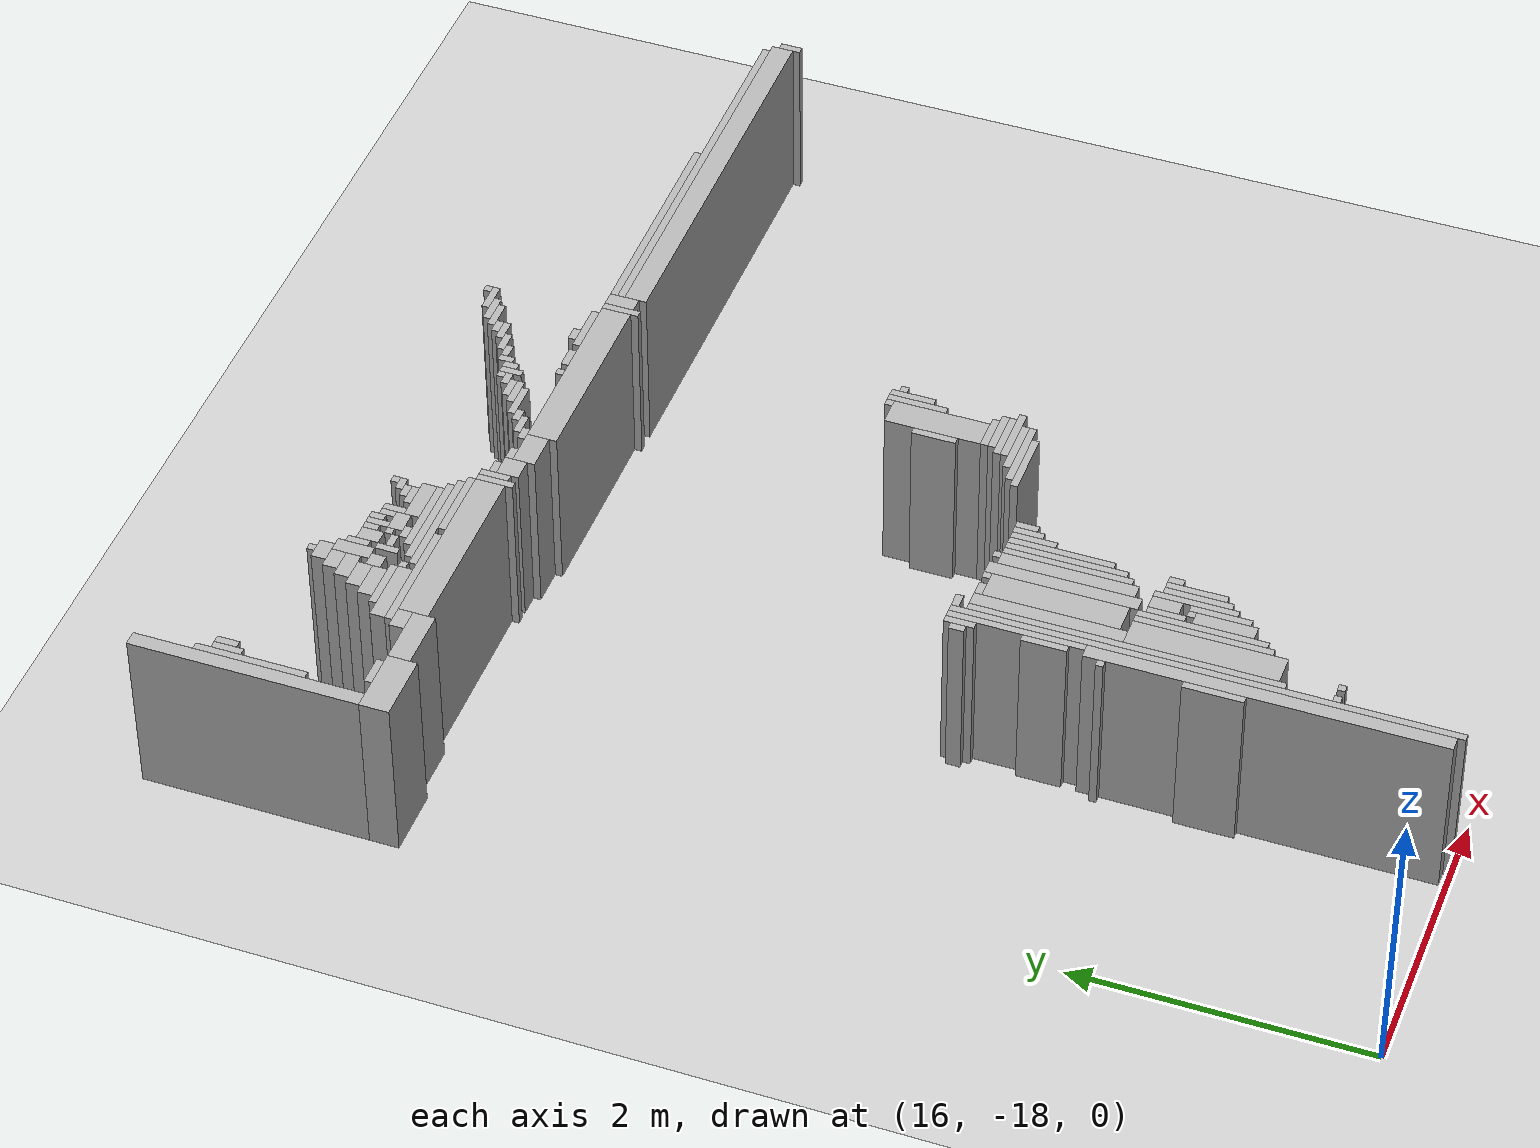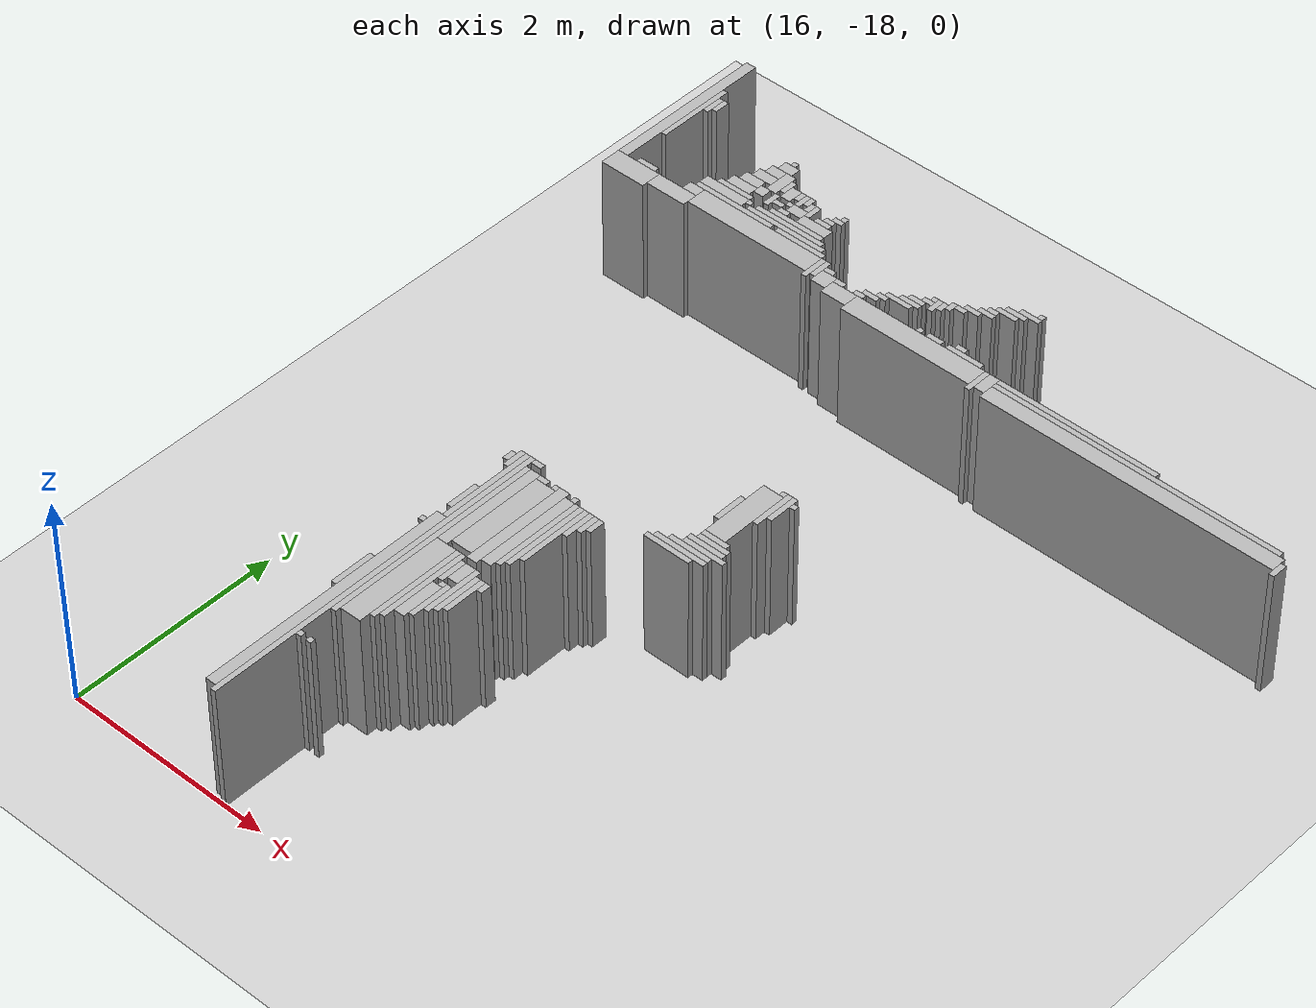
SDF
<sdf version="1.6">
 <world name="d10_floor">
  <include><uri>model://sun</uri></include>
  <include><uri>model://ground_plane</uri></include>
  <model name="d10_walls">
   <static>true</static>
   <link name="w157">
    <pose>17.600 -16.345 0.60 0 0 0</pose>
    <collision name="c"><geometry><box><size>0.050 3.300 1.20</size></box></geometry></collision>
    <visual name="v">
     <geometry><box><size>0.050 3.300 1.20</size></box></geometry>
     <material><ambient>0.6 0.6 0.6 1</ambient><diffuse>0.7 0.7 0.7 1</diffuse></material>
    </visual>
   </link>
   <link name="w164">
    <pose>17.525 -16.770 0.60 0 0 0</pose>
    <collision name="c"><geometry><box><size>0.100 2.350 1.20</size></box></geometry></collision>
    <visual name="v">
     <geometry><box><size>0.100 2.350 1.20</size></box></geometry>
     <material><ambient>0.6 0.6 0.6 1</ambient><diffuse>0.7 0.7 0.7 1</diffuse></material>
    </visual>
   </link>
   <link name="w245">
    <pose>17.650 -17.170 0.60 0 0 0</pose>
    <collision name="c"><geometry><box><size>0.050 0.050 1.20</size></box></geometry></collision>
    <visual name="v">
     <geometry><box><size>0.050 0.050 1.20</size></box></geometry>
     <material><ambient>0.6 0.6 0.6 1</ambient><diffuse>0.7 0.7 0.7 1</diffuse></material>
    </visual>
   </link>
   <link name="w246">
    <pose>17.750 -17.170 0.60 0 0 0</pose>
    <collision name="c"><geometry><box><size>0.050 0.050 1.20</size></box></geometry></collision>
    <visual name="v">
     <geometry><box><size>0.050 0.050 1.20</size></box></geometry>
     <material><ambient>0.6 0.6 0.6 1</ambient><diffuse>0.7 0.7 0.7 1</diffuse></material>
    </visual>
   </link>
   <link name="w257">
    <pose>17.650 -15.820 0.60 0 0 0</pose>
    <collision name="c"><geometry><box><size>0.050 2.050 1.20</size></box></geometry></collision>
    <visual name="v">
     <geometry><box><size>0.050 2.050 1.20</size></box></geometry>
     <material><ambient>0.6 0.6 0.6 1</ambient><diffuse>0.7 0.7 0.7 1</diffuse></material>
    </visual>
   </link>
   <link name="w260">
    <pose>17.775 -16.295 0.60 0 0 0</pose>
    <collision name="c"><geometry><box><size>0.200 1.000 1.20</size></box></geometry></collision>
    <visual name="v">
     <geometry><box><size>0.200 1.000 1.20</size></box></geometry>
     <material><ambient>0.6 0.6 0.6 1</ambient><diffuse>0.7 0.7 0.7 1</diffuse></material>
    </visual>
   </link>
   <link name="w268">
    <pose>17.900 -16.245 0.60 0 0 0</pose>
    <collision name="c"><geometry><box><size>0.050 0.900 1.20</size></box></geometry></collision>
    <visual name="v">
     <geometry><box><size>0.050 0.900 1.20</size></box></geometry>
     <material><ambient>0.6 0.6 0.6 1</ambient><diffuse>0.7 0.7 0.7 1</diffuse></material>
    </visual>
   </link>
   <link name="w272">
    <pose>17.450 -16.445 0.60 0 0 0</pose>
    <collision name="c"><geometry><box><size>0.050 0.400 1.20</size></box></geometry></collision>
    <visual name="v">
     <geometry><box><size>0.050 0.400 1.20</size></box></geometry>
     <material><ambient>0.6 0.6 0.6 1</ambient><diffuse>0.7 0.7 0.7 1</diffuse></material>
    </visual>
   </link>
   <link name="w273">
    <pose>17.950 -16.220 0.60 0 0 0</pose>
    <collision name="c"><geometry><box><size>0.050 0.850 1.20</size></box></geometry></collision>
    <visual name="v">
     <geometry><box><size>0.050 0.850 1.20</size></box></geometry>
     <material><ambient>0.6 0.6 0.6 1</ambient><diffuse>0.7 0.7 0.7 1</diffuse></material>
    </visual>
   </link>
   <link name="w284">
    <pose>18.025 -16.345 0.60 0 0 0</pose>
    <collision name="c"><geometry><box><size>0.100 0.400 1.20</size></box></geometry></collision>
    <visual name="v">
     <geometry><box><size>0.100 0.400 1.20</size></box></geometry>
     <material><ambient>0.6 0.6 0.6 1</ambient><diffuse>0.7 0.7 0.7 1</diffuse></material>
    </visual>
   </link>
   <link name="w287">
    <pose>18.100 -16.295 0.60 0 0 0</pose>
    <collision name="c"><geometry><box><size>0.050 0.400 1.20</size></box></geometry></collision>
    <visual name="v">
     <geometry><box><size>0.050 0.400 1.20</size></box></geometry>
     <material><ambient>0.6 0.6 0.6 1</ambient><diffuse>0.7 0.7 0.7 1</diffuse></material>
    </visual>
   </link>
   <link name="w295">
    <pose>18.150 -16.120 0.60 0 0 0</pose>
    <collision name="c"><geometry><box><size>0.050 0.550 1.20</size></box></geometry></collision>
    <visual name="v">
     <geometry><box><size>0.050 0.550 1.20</size></box></geometry>
     <material><ambient>0.6 0.6 0.6 1</ambient><diffuse>0.7 0.7 0.7 1</diffuse></material>
    </visual>
   </link>
   <link name="w305">
    <pose>18.200 -16.120 0.60 0 0 0</pose>
    <collision name="c"><geometry><box><size>0.050 0.450 1.20</size></box></geometry></collision>
    <visual name="v">
     <geometry><box><size>0.050 0.450 1.20</size></box></geometry>
     <material><ambient>0.6 0.6 0.6 1</ambient><diffuse>0.7 0.7 0.7 1</diffuse></material>
    </visual>
   </link>
   <link name="w320">
    <pose>18.250 -16.095 0.60 0 0 0</pose>
    <collision name="c"><geometry><box><size>0.050 0.400 1.20</size></box></geometry></collision>
    <visual name="v">
     <geometry><box><size>0.050 0.400 1.20</size></box></geometry>
     <material><ambient>0.6 0.6 0.6 1</ambient><diffuse>0.7 0.7 0.7 1</diffuse></material>
    </visual>
   </link>
   <link name="w394">
    <pose>18.050 -16.120 0.60 0 0 0</pose>
    <collision name="c"><geometry><box><size>0.050 0.050 1.20</size></box></geometry></collision>
    <visual name="v">
     <geometry><box><size>0.050 0.050 1.20</size></box></geometry>
     <material><ambient>0.6 0.6 0.6 1</ambient><diffuse>0.7 0.7 0.7 1</diffuse></material>
    </visual>
   </link>
   <link name="w426">
    <pose>18.000 -15.970 0.60 0 0 0</pose>
    <collision name="c"><geometry><box><size>0.050 0.250 1.20</size></box></geometry></collision>
    <visual name="v">
     <geometry><box><size>0.050 0.250 1.20</size></box></geometry>
     <material><ambient>0.6 0.6 0.6 1</ambient><diffuse>0.7 0.7 0.7 1</diffuse></material>
    </visual>
   </link>
   <link name="w453">
    <pose>18.075 -15.945 0.60 0 0 0</pose>
    <collision name="c"><geometry><box><size>0.100 0.200 1.20</size></box></geometry></collision>
    <visual name="v">
     <geometry><box><size>0.100 0.200 1.20</size></box></geometry>
     <material><ambient>0.6 0.6 0.6 1</ambient><diffuse>0.7 0.7 0.7 1</diffuse></material>
    </visual>
   </link>
   <link name="w468">
    <pose>18.300 -15.945 0.60 0 0 0</pose>
    <collision name="c"><geometry><box><size>0.050 0.100 1.20</size></box></geometry></collision>
    <visual name="v">
     <geometry><box><size>0.050 0.100 1.20</size></box></geometry>
     <material><ambient>0.6 0.6 0.6 1</ambient><diffuse>0.7 0.7 0.7 1</diffuse></material>
    </visual>
   </link>
   <link name="w507">
    <pose>17.725 -15.295 0.60 0 0 0</pose>
    <collision name="c"><geometry><box><size>0.100 1.000 1.20</size></box></geometry></collision>
    <visual name="v">
     <geometry><box><size>0.100 1.000 1.20</size></box></geometry>
     <material><ambient>0.6 0.6 0.6 1</ambient><diffuse>0.7 0.7 0.7 1</diffuse></material>
    </visual>
   </link>
   <link name="w508">
    <pose>18.025 -15.295 0.60 0 0 0</pose>
    <collision name="c"><geometry><box><size>0.100 1.000 1.20</size></box></geometry></collision>
    <visual name="v">
     <geometry><box><size>0.100 1.000 1.20</size></box></geometry>
     <material><ambient>0.6 0.6 0.6 1</ambient><diffuse>0.7 0.7 0.7 1</diffuse></material>
    </visual>
   </link>
   <link name="w511">
    <pose>17.450 -15.720 0.60 0 0 0</pose>
    <collision name="c"><geometry><box><size>0.050 0.050 1.20</size></box></geometry></collision>
    <visual name="v">
     <geometry><box><size>0.050 0.050 1.20</size></box></geometry>
     <material><ambient>0.6 0.6 0.6 1</ambient><diffuse>0.7 0.7 0.7 1</diffuse></material>
    </visual>
   </link>
   <link name="w512">
    <pose>17.875 -15.295 0.60 0 0 0</pose>
    <collision name="c"><geometry><box><size>0.200 0.900 1.20</size></box></geometry></collision>
    <visual name="v">
     <geometry><box><size>0.200 0.900 1.20</size></box></geometry>
     <material><ambient>0.6 0.6 0.6 1</ambient><diffuse>0.7 0.7 0.7 1</diffuse></material>
    </visual>
   </link>
   <link name="w513">
    <pose>18.125 -15.295 0.60 0 0 0</pose>
    <collision name="c"><geometry><box><size>0.100 0.900 1.20</size></box></geometry></collision>
    <visual name="v">
     <geometry><box><size>0.100 0.900 1.20</size></box></geometry>
     <material><ambient>0.6 0.6 0.6 1</ambient><diffuse>0.7 0.7 0.7 1</diffuse></material>
    </visual>
   </link>
   <link name="w520">
    <pose>18.200 -15.270 0.60 0 0 0</pose>
    <collision name="c"><geometry><box><size>0.050 0.850 1.20</size></box></geometry></collision>
    <visual name="v">
     <geometry><box><size>0.050 0.850 1.20</size></box></geometry>
     <material><ambient>0.6 0.6 0.6 1</ambient><diffuse>0.7 0.7 0.7 1</diffuse></material>
    </visual>
   </link>
   <link name="w527">
    <pose>18.250 -15.245 0.60 0 0 0</pose>
    <collision name="c"><geometry><box><size>0.050 0.800 1.20</size></box></geometry></collision>
    <visual name="v">
     <geometry><box><size>0.050 0.800 1.20</size></box></geometry>
     <material><ambient>0.6 0.6 0.6 1</ambient><diffuse>0.7 0.7 0.7 1</diffuse></material>
    </visual>
   </link>
   <link name="w540">
    <pose>17.550 -15.145 0.60 0 0 0</pose>
    <collision name="c"><geometry><box><size>0.050 0.900 1.20</size></box></geometry></collision>
    <visual name="v">
     <geometry><box><size>0.050 0.900 1.20</size></box></geometry>
     <material><ambient>0.6 0.6 0.6 1</ambient><diffuse>0.7 0.7 0.7 1</diffuse></material>
    </visual>
   </link>
   <link name="w549">
    <pose>18.300 -15.195 0.60 0 0 0</pose>
    <collision name="c"><geometry><box><size>0.050 0.700 1.20</size></box></geometry></collision>
    <visual name="v">
     <geometry><box><size>0.050 0.700 1.20</size></box></geometry>
     <material><ambient>0.6 0.6 0.6 1</ambient><diffuse>0.7 0.7 0.7 1</diffuse></material>
    </visual>
   </link>
   <link name="w552">
    <pose>17.500 -15.345 0.60 0 0 0</pose>
    <collision name="c"><geometry><box><size>0.050 0.300 1.20</size></box></geometry></collision>
    <visual name="v">
     <geometry><box><size>0.050 0.300 1.20</size></box></geometry>
     <material><ambient>0.6 0.6 0.6 1</ambient><diffuse>0.7 0.7 0.7 1</diffuse></material>
    </visual>
   </link>
   <link name="w564">
    <pose>18.350 -14.995 0.60 0 0 0</pose>
    <collision name="c"><geometry><box><size>0.050 0.300 1.20</size></box></geometry></collision>
    <visual name="v">
     <geometry><box><size>0.050 0.300 1.20</size></box></geometry>
     <material><ambient>0.6 0.6 0.6 1</ambient><diffuse>0.7 0.7 0.7 1</diffuse></material>
    </visual>
   </link>
   <link name="w566">
    <pose>18.400 -14.945 0.60 0 0 0</pose>
    <collision name="c"><geometry><box><size>0.050 0.200 1.20</size></box></geometry></collision>
    <visual name="v">
     <geometry><box><size>0.050 0.200 1.20</size></box></geometry>
     <material><ambient>0.6 0.6 0.6 1</ambient><diffuse>0.7 0.7 0.7 1</diffuse></material>
    </visual>
   </link>
   <link name="w568">
    <pose>18.450 -14.920 0.60 0 0 0</pose>
    <collision name="c"><geometry><box><size>0.050 0.150 1.20</size></box></geometry></collision>
    <visual name="v">
     <geometry><box><size>0.050 0.150 1.20</size></box></geometry>
     <material><ambient>0.6 0.6 0.6 1</ambient><diffuse>0.7 0.7 0.7 1</diffuse></material>
    </visual>
   </link>
   <link name="w569">
    <pose>17.500 -14.795 0.60 0 0 0</pose>
    <collision name="c"><geometry><box><size>0.050 0.200 1.20</size></box></geometry></collision>
    <visual name="v">
     <geometry><box><size>0.050 0.200 1.20</size></box></geometry>
     <material><ambient>0.6 0.6 0.6 1</ambient><diffuse>0.7 0.7 0.7 1</diffuse></material>
    </visual>
   </link>
   <link name="w570">
    <pose>17.450 -14.795 0.60 0 0 0</pose>
    <collision name="c"><geometry><box><size>0.050 0.100 1.20</size></box></geometry></collision>
    <visual name="v">
     <geometry><box><size>0.050 0.100 1.20</size></box></geometry>
     <material><ambient>0.6 0.6 0.6 1</ambient><diffuse>0.7 0.7 0.7 1</diffuse></material>
    </visual>
   </link>
   <link name="w571">
    <pose>17.825 -14.820 0.60 0 0 0</pose>
    <collision name="c"><geometry><box><size>0.100 0.050 1.20</size></box></geometry></collision>
    <visual name="v">
     <geometry><box><size>0.100 0.050 1.20</size></box></geometry>
     <material><ambient>0.6 0.6 0.6 1</ambient><diffuse>0.7 0.7 0.7 1</diffuse></material>
    </visual>
   </link>
   <link name="w572">
    <pose>17.950 -14.820 0.60 0 0 0</pose>
    <collision name="c"><geometry><box><size>0.050 0.050 1.20</size></box></geometry></collision>
    <visual name="v">
     <geometry><box><size>0.050 0.050 1.20</size></box></geometry>
     <material><ambient>0.6 0.6 0.6 1</ambient><diffuse>0.7 0.7 0.7 1</diffuse></material>
    </visual>
   </link>
   <link name="w573">
    <pose>18.150 -14.820 0.60 0 0 0</pose>
    <collision name="c"><geometry><box><size>0.050 0.050 1.20</size></box></geometry></collision>
    <visual name="v">
     <geometry><box><size>0.050 0.050 1.20</size></box></geometry>
     <material><ambient>0.6 0.6 0.6 1</ambient><diffuse>0.7 0.7 0.7 1</diffuse></material>
    </visual>
   </link>
   <link name="w574">
    <pose>17.675 -14.720 0.60 0 0 0</pose>
    <collision name="c"><geometry><box><size>0.100 0.050 1.20</size></box></geometry></collision>
    <visual name="v">
     <geometry><box><size>0.100 0.050 1.20</size></box></geometry>
     <material><ambient>0.6 0.6 0.6 1</ambient><diffuse>0.7 0.7 0.7 1</diffuse></material>
    </visual>
   </link>
   <link name="w575">
    <pose>19.000 -14.720 0.60 0 0 0</pose>
    <collision name="c"><geometry><box><size>0.450 0.050 1.20</size></box></geometry></collision>
    <visual name="v">
     <geometry><box><size>0.450 0.050 1.20</size></box></geometry>
     <material><ambient>0.6 0.6 0.6 1</ambient><diffuse>0.7 0.7 0.7 1</diffuse></material>
    </visual>
   </link>
   <link name="w576">
    <pose>19.075 -14.670 0.60 0 0 0</pose>
    <collision name="c"><geometry><box><size>0.500 0.050 1.20</size></box></geometry></collision>
    <visual name="v">
     <geometry><box><size>0.500 0.050 1.20</size></box></geometry>
     <material><ambient>0.6 0.6 0.6 1</ambient><diffuse>0.7 0.7 0.7 1</diffuse></material>
    </visual>
   </link>
   <link name="w577">
    <pose>19.125 -14.620 0.60 0 0 0</pose>
    <collision name="c"><geometry><box><size>0.400 0.050 1.20</size></box></geometry></collision>
    <visual name="v">
     <geometry><box><size>0.400 0.050 1.20</size></box></geometry>
     <material><ambient>0.6 0.6 0.6 1</ambient><diffuse>0.7 0.7 0.7 1</diffuse></material>
    </visual>
   </link>
   <link name="w578">
    <pose>19.225 -14.570 0.60 0 0 0</pose>
    <collision name="c"><geometry><box><size>0.400 0.050 1.20</size></box></geometry></collision>
    <visual name="v">
     <geometry><box><size>0.400 0.050 1.20</size></box></geometry>
     <material><ambient>0.6 0.6 0.6 1</ambient><diffuse>0.7 0.7 0.7 1</diffuse></material>
    </visual>
   </link>
   <link name="w579">
    <pose>19.200 -14.520 0.60 0 0 0</pose>
    <collision name="c"><geometry><box><size>0.350 0.050 1.20</size></box></geometry></collision>
    <visual name="v">
     <geometry><box><size>0.350 0.050 1.20</size></box></geometry>
     <material><ambient>0.6 0.6 0.6 1</ambient><diffuse>0.7 0.7 0.7 1</diffuse></material>
    </visual>
   </link>
   <link name="w580">
    <pose>19.225 -14.470 0.60 0 0 0</pose>
    <collision name="c"><geometry><box><size>0.300 0.050 1.20</size></box></geometry></collision>
    <visual name="v">
     <geometry><box><size>0.300 0.050 1.20</size></box></geometry>
     <material><ambient>0.6 0.6 0.6 1</ambient><diffuse>0.7 0.7 0.7 1</diffuse></material>
    </visual>
   </link>
   <link name="w581">
    <pose>19.200 -14.420 0.60 0 0 0</pose>
    <collision name="c"><geometry><box><size>0.250 0.050 1.20</size></box></geometry></collision>
    <visual name="v">
     <geometry><box><size>0.250 0.050 1.20</size></box></geometry>
     <material><ambient>0.6 0.6 0.6 1</ambient><diffuse>0.7 0.7 0.7 1</diffuse></material>
    </visual>
   </link>
   <link name="w582">
    <pose>19.175 -14.070 0.60 0 0 0</pose>
    <collision name="c"><geometry><box><size>0.200 0.650 1.20</size></box></geometry></collision>
    <visual name="v">
     <geometry><box><size>0.200 0.650 1.20</size></box></geometry>
     <material><ambient>0.6 0.6 0.6 1</ambient><diffuse>0.7 0.7 0.7 1</diffuse></material>
    </visual>
   </link>
   <link name="w584">
    <pose>19.050 -14.095 0.60 0 0 0</pose>
    <collision name="c"><geometry><box><size>0.050 0.300 1.20</size></box></geometry></collision>
    <visual name="v">
     <geometry><box><size>0.050 0.300 1.20</size></box></geometry>
     <material><ambient>0.6 0.6 0.6 1</ambient><diffuse>0.7 0.7 0.7 1</diffuse></material>
    </visual>
   </link>
   <link name="w591">
    <pose>19.300 -13.895 0.60 0 0 0</pose>
    <collision name="c"><geometry><box><size>0.050 0.400 1.20</size></box></geometry></collision>
    <visual name="v">
     <geometry><box><size>0.050 0.400 1.20</size></box></geometry>
     <material><ambient>0.6 0.6 0.6 1</ambient><diffuse>0.7 0.7 0.7 1</diffuse></material>
    </visual>
   </link>
   <link name="w602">
    <pose>19.350 -13.845 0.60 0 0 0</pose>
    <collision name="c"><geometry><box><size>0.050 0.300 1.20</size></box></geometry></collision>
    <visual name="v">
     <geometry><box><size>0.050 0.300 1.20</size></box></geometry>
     <material><ambient>0.6 0.6 0.6 1</ambient><diffuse>0.7 0.7 0.7 1</diffuse></material>
    </visual>
   </link>
   <link name="w622">
    <pose>19.400 -13.770 0.60 0 0 0</pose>
    <collision name="c"><geometry><box><size>0.050 0.050 1.20</size></box></geometry></collision>
    <visual name="v">
     <geometry><box><size>0.050 0.050 1.20</size></box></geometry>
     <material><ambient>0.6 0.6 0.6 1</ambient><diffuse>0.7 0.7 0.7 1</diffuse></material>
    </visual>
   </link>
   <link name="w631">
    <pose>19.250 -13.720 0.60 0 0 0</pose>
    <collision name="c"><geometry><box><size>0.050 0.050 1.20</size></box></geometry></collision>
    <visual name="v">
     <geometry><box><size>0.050 0.050 1.20</size></box></geometry>
     <material><ambient>0.6 0.6 0.6 1</ambient><diffuse>0.7 0.7 0.7 1</diffuse></material>
    </visual>
   </link>
   <link name="w925">
    <pose>22.450 -11.870 0.60 0 0 0</pose>
    <collision name="c"><geometry><box><size>0.050 0.150 1.20</size></box></geometry></collision>
    <visual name="v">
     <geometry><box><size>0.050 0.150 1.20</size></box></geometry>
     <material><ambient>0.6 0.6 0.6 1</ambient><diffuse>0.7 0.7 0.7 1</diffuse></material>
    </visual>
   </link>
   <link name="w930">
    <pose>19.500 -11.770 0.60 0 0 0</pose>
    <collision name="c"><geometry><box><size>0.050 0.250 1.20</size></box></geometry></collision>
    <visual name="v">
     <geometry><box><size>0.050 0.250 1.20</size></box></geometry>
     <material><ambient>0.6 0.6 0.6 1</ambient><diffuse>0.7 0.7 0.7 1</diffuse></material>
    </visual>
   </link>
   <link name="w931">
    <pose>21.025 -11.820 0.60 0 0 0</pose>
    <collision name="c"><geometry><box><size>2.800 0.150 1.20</size></box></geometry></collision>
    <visual name="v">
     <geometry><box><size>2.800 0.150 1.20</size></box></geometry>
     <material><ambient>0.6 0.6 0.6 1</ambient><diffuse>0.7 0.7 0.7 1</diffuse></material>
    </visual>
   </link>
   <link name="w933">
    <pose>18.825 -11.745 0.60 0 0 0</pose>
    <collision name="c"><geometry><box><size>1.300 0.200 1.20</size></box></geometry></collision>
    <visual name="v">
     <geometry><box><size>1.300 0.200 1.20</size></box></geometry>
     <material><ambient>0.6 0.6 0.6 1</ambient><diffuse>0.7 0.7 0.7 1</diffuse></material>
    </visual>
   </link>
   <link name="w934">
    <pose>19.575 -11.745 0.60 0 0 0</pose>
    <collision name="c"><geometry><box><size>0.100 0.200 1.20</size></box></geometry></collision>
    <visual name="v">
     <geometry><box><size>0.100 0.200 1.20</size></box></geometry>
     <material><ambient>0.6 0.6 0.6 1</ambient><diffuse>0.7 0.7 0.7 1</diffuse></material>
    </visual>
   </link>
   <link name="w938">
    <pose>15.800 -11.695 0.60 0 0 0</pose>
    <collision name="c"><geometry><box><size>0.450 0.200 1.20</size></box></geometry></collision>
    <visual name="v">
     <geometry><box><size>0.450 0.200 1.20</size></box></geometry>
     <material><ambient>0.6 0.6 0.6 1</ambient><diffuse>0.7 0.7 0.7 1</diffuse></material>
    </visual>
   </link>
   <link name="w939">
    <pose>18.050 -11.720 0.60 0 0 0</pose>
    <collision name="c"><geometry><box><size>0.250 0.150 1.20</size></box></geometry></collision>
    <visual name="v">
     <geometry><box><size>0.250 0.150 1.20</size></box></geometry>
     <material><ambient>0.6 0.6 0.6 1</ambient><diffuse>0.7 0.7 0.7 1</diffuse></material>
    </visual>
   </link>
   <link name="w946">
    <pose>16.225 -11.670 0.60 0 0 0</pose>
    <collision name="c"><geometry><box><size>0.400 0.150 1.20</size></box></geometry></collision>
    <visual name="v">
     <geometry><box><size>0.400 0.150 1.20</size></box></geometry>
     <material><ambient>0.6 0.6 0.6 1</ambient><diffuse>0.7 0.7 0.7 1</diffuse></material>
    </visual>
   </link>
   <link name="w947">
    <pose>17.700 -11.620 0.60 0 0 0</pose>
    <collision name="c"><geometry><box><size>0.050 0.250 1.20</size></box></geometry></collision>
    <visual name="v">
     <geometry><box><size>0.050 0.250 1.20</size></box></geometry>
     <material><ambient>0.6 0.6 0.6 1</ambient><diffuse>0.7 0.7 0.7 1</diffuse></material>
    </visual>
   </link>
   <link name="w948">
    <pose>17.850 -11.670 0.60 0 0 0</pose>
    <collision name="c"><geometry><box><size>0.150 0.150 1.20</size></box></geometry></collision>
    <visual name="v">
     <geometry><box><size>0.150 0.150 1.20</size></box></geometry>
     <material><ambient>0.6 0.6 0.6 1</ambient><diffuse>0.7 0.7 0.7 1</diffuse></material>
    </visual>
   </link>
   <link name="w949">
    <pose>21.000 -11.720 0.60 0 0 0</pose>
    <collision name="c"><geometry><box><size>2.750 0.050 1.20</size></box></geometry></collision>
    <visual name="v">
     <geometry><box><size>2.750 0.050 1.20</size></box></geometry>
     <material><ambient>0.6 0.6 0.6 1</ambient><diffuse>0.7 0.7 0.7 1</diffuse></material>
    </visual>
   </link>
   <link name="w952">
    <pose>17.050 -11.595 0.60 0 0 0</pose>
    <collision name="c"><geometry><box><size>1.250 0.200 1.20</size></box></geometry></collision>
    <visual name="v">
     <geometry><box><size>1.250 0.200 1.20</size></box></geometry>
     <material><ambient>0.6 0.6 0.6 1</ambient><diffuse>0.7 0.7 0.7 1</diffuse></material>
    </visual>
   </link>
   <link name="w953">
    <pose>17.750 -11.595 0.60 0 0 0</pose>
    <collision name="c"><geometry><box><size>0.050 0.200 1.20</size></box></geometry></collision>
    <visual name="v">
     <geometry><box><size>0.050 0.200 1.20</size></box></geometry>
     <material><ambient>0.6 0.6 0.6 1</ambient><diffuse>0.7 0.7 0.7 1</diffuse></material>
    </visual>
   </link>
   <link name="w954">
    <pose>20.400 -11.670 0.60 0 0 0</pose>
    <collision name="c"><geometry><box><size>1.550 0.050 1.20</size></box></geometry></collision>
    <visual name="v">
     <geometry><box><size>1.550 0.050 1.20</size></box></geometry>
     <material><ambient>0.6 0.6 0.6 1</ambient><diffuse>0.7 0.7 0.7 1</diffuse></material>
    </visual>
   </link>
   <link name="w957">
    <pose>17.975 -11.620 0.60 0 0 0</pose>
    <collision name="c"><geometry><box><size>0.100 0.050 1.20</size></box></geometry></collision>
    <visual name="v">
     <geometry><box><size>0.100 0.050 1.20</size></box></geometry>
     <material><ambient>0.6 0.6 0.6 1</ambient><diffuse>0.7 0.7 0.7 1</diffuse></material>
    </visual>
   </link>
   <link name="w958">
    <pose>18.175 -11.620 0.60 0 0 0</pose>
    <collision name="c"><geometry><box><size>0.100 0.050 1.20</size></box></geometry></collision>
    <visual name="v">
     <geometry><box><size>0.100 0.050 1.20</size></box></geometry>
     <material><ambient>0.6 0.6 0.6 1</ambient><diffuse>0.7 0.7 0.7 1</diffuse></material>
    </visual>
   </link>
   <link name="w959">
    <pose>18.800 -11.620 0.60 0 0 0</pose>
    <collision name="c"><geometry><box><size>0.050 0.050 1.20</size></box></geometry></collision>
    <visual name="v">
     <geometry><box><size>0.050 0.050 1.20</size></box></geometry>
     <material><ambient>0.6 0.6 0.6 1</ambient><diffuse>0.7 0.7 0.7 1</diffuse></material>
    </visual>
   </link>
   <link name="w960">
    <pose>18.950 -11.620 0.60 0 0 0</pose>
    <collision name="c"><geometry><box><size>0.150 0.050 1.20</size></box></geometry></collision>
    <visual name="v">
     <geometry><box><size>0.150 0.050 1.20</size></box></geometry>
     <material><ambient>0.6 0.6 0.6 1</ambient><diffuse>0.7 0.7 0.7 1</diffuse></material>
    </visual>
   </link>
   <link name="w961">
    <pose>19.250 -11.620 0.60 0 0 0</pose>
    <collision name="c"><geometry><box><size>0.350 0.050 1.20</size></box></geometry></collision>
    <visual name="v">
     <geometry><box><size>0.350 0.050 1.20</size></box></geometry>
     <material><ambient>0.6 0.6 0.6 1</ambient><diffuse>0.7 0.7 0.7 1</diffuse></material>
    </visual>
   </link>
   <link name="w965">
    <pose>15.625 -10.820 0.60 0 0 0</pose>
    <collision name="c"><geometry><box><size>0.100 1.550 1.20</size></box></geometry></collision>
    <visual name="v">
     <geometry><box><size>0.100 1.550 1.20</size></box></geometry>
     <material><ambient>0.6 0.6 0.6 1</ambient><diffuse>0.7 0.7 0.7 1</diffuse></material>
    </visual>
   </link>
   <link name="w966">
    <pose>15.875 -11.570 0.60 0 0 0</pose>
    <collision name="c"><geometry><box><size>0.200 0.050 1.20</size></box></geometry></collision>
    <visual name="v">
     <geometry><box><size>0.200 0.050 1.20</size></box></geometry>
     <material><ambient>0.6 0.6 0.6 1</ambient><diffuse>0.7 0.7 0.7 1</diffuse></material>
    </visual>
   </link>
   <link name="w967">
    <pose>16.350 -11.545 0.60 0 0 0</pose>
    <collision name="c"><geometry><box><size>0.150 0.100 1.20</size></box></geometry></collision>
    <visual name="v">
     <geometry><box><size>0.150 0.100 1.20</size></box></geometry>
     <material><ambient>0.6 0.6 0.6 1</ambient><diffuse>0.7 0.7 0.7 1</diffuse></material>
    </visual>
   </link>
   <link name="w968">
    <pose>17.825 -11.570 0.60 0 0 0</pose>
    <collision name="c"><geometry><box><size>0.100 0.050 1.20</size></box></geometry></collision>
    <visual name="v">
     <geometry><box><size>0.100 0.050 1.20</size></box></geometry>
     <material><ambient>0.6 0.6 0.6 1</ambient><diffuse>0.7 0.7 0.7 1</diffuse></material>
    </visual>
   </link>
   <link name="w969">
    <pose>18.250 -11.570 0.60 0 0 0</pose>
    <collision name="c"><geometry><box><size>0.150 0.050 1.20</size></box></geometry></collision>
    <visual name="v">
     <geometry><box><size>0.150 0.050 1.20</size></box></geometry>
     <material><ambient>0.6 0.6 0.6 1</ambient><diffuse>0.7 0.7 0.7 1</diffuse></material>
    </visual>
   </link>
   <link name="w970">
    <pose>19.175 -11.570 0.60 0 0 0</pose>
    <collision name="c"><geometry><box><size>0.100 0.050 1.20</size></box></geometry></collision>
    <visual name="v">
     <geometry><box><size>0.100 0.050 1.20</size></box></geometry>
     <material><ambient>0.6 0.6 0.6 1</ambient><diffuse>0.7 0.7 0.7 1</diffuse></material>
    </visual>
   </link>
   <link name="w971">
    <pose>18.325 -11.520 0.60 0 0 0</pose>
    <collision name="c"><geometry><box><size>0.100 0.050 1.20</size></box></geometry></collision>
    <visual name="v">
     <geometry><box><size>0.100 0.050 1.20</size></box></geometry>
     <material><ambient>0.6 0.6 0.6 1</ambient><diffuse>0.7 0.7 0.7 1</diffuse></material>
    </visual>
   </link>
   <link name="w972">
    <pose>16.725 -11.470 0.60 0 0 0</pose>
    <collision name="c"><geometry><box><size>0.800 0.050 1.20</size></box></geometry></collision>
    <visual name="v">
     <geometry><box><size>0.800 0.050 1.20</size></box></geometry>
     <material><ambient>0.6 0.6 0.6 1</ambient><diffuse>0.7 0.7 0.7 1</diffuse></material>
    </visual>
   </link>
   <link name="w973">
    <pose>17.425 -11.470 0.60 0 0 0</pose>
    <collision name="c"><geometry><box><size>0.500 0.050 1.20</size></box></geometry></collision>
    <visual name="v">
     <geometry><box><size>0.500 0.050 1.20</size></box></geometry>
     <material><ambient>0.6 0.6 0.6 1</ambient><diffuse>0.7 0.7 0.7 1</diffuse></material>
    </visual>
   </link>
   <link name="w974">
    <pose>18.450 -11.470 0.60 0 0 0</pose>
    <collision name="c"><geometry><box><size>0.250 0.050 1.20</size></box></geometry></collision>
    <visual name="v">
     <geometry><box><size>0.250 0.050 1.20</size></box></geometry>
     <material><ambient>0.6 0.6 0.6 1</ambient><diffuse>0.7 0.7 0.7 1</diffuse></material>
    </visual>
   </link>
   <link name="w976">
    <pose>16.550 -11.395 0.60 0 0 0</pose>
    <collision name="c"><geometry><box><size>0.450 0.100 1.20</size></box></geometry></collision>
    <visual name="v">
     <geometry><box><size>0.450 0.100 1.20</size></box></geometry>
     <material><ambient>0.6 0.6 0.6 1</ambient><diffuse>0.7 0.7 0.7 1</diffuse></material>
    </visual>
   </link>
   <link name="w977">
    <pose>17.225 -11.420 0.60 0 0 0</pose>
    <collision name="c"><geometry><box><size>0.800 0.050 1.20</size></box></geometry></collision>
    <visual name="v">
     <geometry><box><size>0.800 0.050 1.20</size></box></geometry>
     <material><ambient>0.6 0.6 0.6 1</ambient><diffuse>0.7 0.7 0.7 1</diffuse></material>
    </visual>
   </link>
   <link name="w978">
    <pose>18.525 -11.420 0.60 0 0 0</pose>
    <collision name="c"><geometry><box><size>0.200 0.050 1.20</size></box></geometry></collision>
    <visual name="v">
     <geometry><box><size>0.200 0.050 1.20</size></box></geometry>
     <material><ambient>0.6 0.6 0.6 1</ambient><diffuse>0.7 0.7 0.7 1</diffuse></material>
    </visual>
   </link>
   <link name="w980">
    <pose>16.800 -11.370 0.60 0 0 0</pose>
    <collision name="c"><geometry><box><size>0.050 0.050 1.20</size></box></geometry></collision>
    <visual name="v">
     <geometry><box><size>0.050 0.050 1.20</size></box></geometry>
     <material><ambient>0.6 0.6 0.6 1</ambient><diffuse>0.7 0.7 0.7 1</diffuse></material>
    </visual>
   </link>
   <link name="w981">
    <pose>17.225 -11.370 0.60 0 0 0</pose>
    <collision name="c"><geometry><box><size>0.700 0.050 1.20</size></box></geometry></collision>
    <visual name="v">
     <geometry><box><size>0.700 0.050 1.20</size></box></geometry>
     <material><ambient>0.6 0.6 0.6 1</ambient><diffuse>0.7 0.7 0.7 1</diffuse></material>
    </visual>
   </link>
   <link name="w982">
    <pose>18.550 -11.370 0.60 0 0 0</pose>
    <collision name="c"><geometry><box><size>0.150 0.050 1.20</size></box></geometry></collision>
    <visual name="v">
     <geometry><box><size>0.150 0.050 1.20</size></box></geometry>
     <material><ambient>0.6 0.6 0.6 1</ambient><diffuse>0.7 0.7 0.7 1</diffuse></material>
    </visual>
   </link>
   <link name="w983">
    <pose>18.700 -11.320 0.60 0 0 0</pose>
    <collision name="c"><geometry><box><size>0.050 0.150 1.20</size></box></geometry></collision>
    <visual name="v">
     <geometry><box><size>0.050 0.150 1.20</size></box></geometry>
     <material><ambient>0.6 0.6 0.6 1</ambient><diffuse>0.7 0.7 0.7 1</diffuse></material>
    </visual>
   </link>
   <link name="w984">
    <pose>16.600 -11.320 0.60 0 0 0</pose>
    <collision name="c"><geometry><box><size>0.350 0.050 1.20</size></box></geometry></collision>
    <visual name="v">
     <geometry><box><size>0.350 0.050 1.20</size></box></geometry>
     <material><ambient>0.6 0.6 0.6 1</ambient><diffuse>0.7 0.7 0.7 1</diffuse></material>
    </visual>
   </link>
   <link name="w985">
    <pose>17.250 -11.320 0.60 0 0 0</pose>
    <collision name="c"><geometry><box><size>0.550 0.050 1.20</size></box></geometry></collision>
    <visual name="v">
     <geometry><box><size>0.550 0.050 1.20</size></box></geometry>
     <material><ambient>0.6 0.6 0.6 1</ambient><diffuse>0.7 0.7 0.7 1</diffuse></material>
    </visual>
   </link>
   <link name="w986">
    <pose>18.625 -11.320 0.60 0 0 0</pose>
    <collision name="c"><geometry><box><size>0.100 0.050 1.20</size></box></geometry></collision>
    <visual name="v">
     <geometry><box><size>0.100 0.050 1.20</size></box></geometry>
     <material><ambient>0.6 0.6 0.6 1</ambient><diffuse>0.7 0.7 0.7 1</diffuse></material>
    </visual>
   </link>
   <link name="w987">
    <pose>18.750 -11.295 0.60 0 0 0</pose>
    <collision name="c"><geometry><box><size>0.050 0.100 1.20</size></box></geometry></collision>
    <visual name="v">
     <geometry><box><size>0.050 0.100 1.20</size></box></geometry>
     <material><ambient>0.6 0.6 0.6 1</ambient><diffuse>0.7 0.7 0.7 1</diffuse></material>
    </visual>
   </link>
   <link name="w988">
    <pose>16.600 -11.245 0.60 0 0 0</pose>
    <collision name="c"><geometry><box><size>0.250 0.100 1.20</size></box></geometry></collision>
    <visual name="v">
     <geometry><box><size>0.250 0.100 1.20</size></box></geometry>
     <material><ambient>0.6 0.6 0.6 1</ambient><diffuse>0.7 0.7 0.7 1</diffuse></material>
    </visual>
   </link>
   <link name="w989">
    <pose>16.900 -11.220 0.60 0 0 0</pose>
    <collision name="c"><geometry><box><size>0.050 0.150 1.20</size></box></geometry></collision>
    <visual name="v">
     <geometry><box><size>0.050 0.150 1.20</size></box></geometry>
     <material><ambient>0.6 0.6 0.6 1</ambient><diffuse>0.7 0.7 0.7 1</diffuse></material>
    </visual>
   </link>
   <link name="w990">
    <pose>17.075 -11.270 0.60 0 0 0</pose>
    <collision name="c"><geometry><box><size>0.100 0.050 1.20</size></box></geometry></collision>
    <visual name="v">
     <geometry><box><size>0.100 0.050 1.20</size></box></geometry>
     <material><ambient>0.6 0.6 0.6 1</ambient><diffuse>0.7 0.7 0.7 1</diffuse></material>
    </visual>
   </link>
   <link name="w991">
    <pose>17.375 -11.245 0.60 0 0 0</pose>
    <collision name="c"><geometry><box><size>0.300 0.100 1.20</size></box></geometry></collision>
    <visual name="v">
     <geometry><box><size>0.300 0.100 1.20</size></box></geometry>
     <material><ambient>0.6 0.6 0.6 1</ambient><diffuse>0.7 0.7 0.7 1</diffuse></material>
    </visual>
   </link>
   <link name="w992">
    <pose>18.650 -11.270 0.60 0 0 0</pose>
    <collision name="c"><geometry><box><size>0.050 0.050 1.20</size></box></geometry></collision>
    <visual name="v">
     <geometry><box><size>0.050 0.050 1.20</size></box></geometry>
     <material><ambient>0.6 0.6 0.6 1</ambient><diffuse>0.7 0.7 0.7 1</diffuse></material>
    </visual>
   </link>
   <link name="w993">
    <pose>18.800 -11.245 0.60 0 0 0</pose>
    <collision name="c"><geometry><box><size>0.050 0.100 1.20</size></box></geometry></collision>
    <visual name="v">
     <geometry><box><size>0.050 0.100 1.20</size></box></geometry>
     <material><ambient>0.6 0.6 0.6 1</ambient><diffuse>0.7 0.7 0.7 1</diffuse></material>
    </visual>
   </link>
   <link name="w995">
    <pose>16.775 -11.195 0.60 0 0 0</pose>
    <collision name="c"><geometry><box><size>0.100 0.100 1.20</size></box></geometry></collision>
    <visual name="v">
     <geometry><box><size>0.100 0.100 1.20</size></box></geometry>
     <material><ambient>0.6 0.6 0.6 1</ambient><diffuse>0.7 0.7 0.7 1</diffuse></material>
    </visual>
   </link>
   <link name="w996">
    <pose>16.975 -11.220 0.60 0 0 0</pose>
    <collision name="c"><geometry><box><size>0.100 0.050 1.20</size></box></geometry></collision>
    <visual name="v">
     <geometry><box><size>0.100 0.050 1.20</size></box></geometry>
     <material><ambient>0.6 0.6 0.6 1</ambient><diffuse>0.7 0.7 0.7 1</diffuse></material>
    </visual>
   </link>
   <link name="w997">
    <pose>17.150 -11.195 0.60 0 0 0</pose>
    <collision name="c"><geometry><box><size>0.150 0.100 1.20</size></box></geometry></collision>
    <visual name="v">
     <geometry><box><size>0.150 0.100 1.20</size></box></geometry>
     <material><ambient>0.6 0.6 0.6 1</ambient><diffuse>0.7 0.7 0.7 1</diffuse></material>
    </visual>
   </link>
   <link name="w998">
    <pose>18.875 -11.220 0.60 0 0 0</pose>
    <collision name="c"><geometry><box><size>0.100 0.050 1.20</size></box></geometry></collision>
    <visual name="v">
     <geometry><box><size>0.100 0.050 1.20</size></box></geometry>
     <material><ambient>0.6 0.6 0.6 1</ambient><diffuse>0.7 0.7 0.7 1</diffuse></material>
    </visual>
   </link>
   <link name="w1001">
    <pose>15.700 -10.820 0.60 0 0 0</pose>
    <collision name="c"><geometry><box><size>0.050 0.750 1.20</size></box></geometry></collision>
    <visual name="v">
     <geometry><box><size>0.050 0.750 1.20</size></box></geometry>
     <material><ambient>0.6 0.6 0.6 1</ambient><diffuse>0.7 0.7 0.7 1</diffuse></material>
    </visual>
   </link>
   <link name="w1002">
    <pose>16.625 -11.145 0.60 0 0 0</pose>
    <collision name="c"><geometry><box><size>0.200 0.100 1.20</size></box></geometry></collision>
    <visual name="v">
     <geometry><box><size>0.200 0.100 1.20</size></box></geometry>
     <material><ambient>0.6 0.6 0.6 1</ambient><diffuse>0.7 0.7 0.7 1</diffuse></material>
    </visual>
   </link>
   <link name="w1003">
    <pose>17.050 -11.170 0.60 0 0 0</pose>
    <collision name="c"><geometry><box><size>0.050 0.050 1.20</size></box></geometry></collision>
    <visual name="v">
     <geometry><box><size>0.050 0.050 1.20</size></box></geometry>
     <material><ambient>0.6 0.6 0.6 1</ambient><diffuse>0.7 0.7 0.7 1</diffuse></material>
    </visual>
   </link>
   <link name="w1004">
    <pose>17.250 -11.120 0.60 0 0 0</pose>
    <collision name="c"><geometry><box><size>0.050 0.150 1.20</size></box></geometry></collision>
    <visual name="v">
     <geometry><box><size>0.050 0.150 1.20</size></box></geometry>
     <material><ambient>0.6 0.6 0.6 1</ambient><diffuse>0.7 0.7 0.7 1</diffuse></material>
    </visual>
   </link>
   <link name="w1005">
    <pose>17.400 -11.170 0.60 0 0 0</pose>
    <collision name="c"><geometry><box><size>0.150 0.050 1.20</size></box></geometry></collision>
    <visual name="v">
     <geometry><box><size>0.150 0.050 1.20</size></box></geometry>
     <material><ambient>0.6 0.6 0.6 1</ambient><diffuse>0.7 0.7 0.7 1</diffuse></material>
    </visual>
   </link>
   <link name="w1006">
    <pose>18.950 -11.170 0.60 0 0 0</pose>
    <collision name="c"><geometry><box><size>0.150 0.050 1.20</size></box></geometry></collision>
    <visual name="v">
     <geometry><box><size>0.150 0.050 1.20</size></box></geometry>
     <material><ambient>0.6 0.6 0.6 1</ambient><diffuse>0.7 0.7 0.7 1</diffuse></material>
    </visual>
   </link>
   <link name="w1007">
    <pose>16.825 -11.020 0.60 0 0 0</pose>
    <collision name="c"><geometry><box><size>0.100 0.250 1.20</size></box></geometry></collision>
    <visual name="v">
     <geometry><box><size>0.100 0.250 1.20</size></box></geometry>
     <material><ambient>0.6 0.6 0.6 1</ambient><diffuse>0.7 0.7 0.7 1</diffuse></material>
    </visual>
   </link>
   <link name="w1008">
    <pose>16.975 -11.070 0.60 0 0 0</pose>
    <collision name="c"><geometry><box><size>0.100 0.150 1.20</size></box></geometry></collision>
    <visual name="v">
     <geometry><box><size>0.100 0.150 1.20</size></box></geometry>
     <material><ambient>0.6 0.6 0.6 1</ambient><diffuse>0.7 0.7 0.7 1</diffuse></material>
    </visual>
   </link>
   <link name="w1009">
    <pose>17.100 -11.070 0.60 0 0 0</pose>
    <collision name="c"><geometry><box><size>0.050 0.150 1.20</size></box></geometry></collision>
    <visual name="v">
     <geometry><box><size>0.050 0.150 1.20</size></box></geometry>
     <material><ambient>0.6 0.6 0.6 1</ambient><diffuse>0.7 0.7 0.7 1</diffuse></material>
    </visual>
   </link>
   <link name="w1010">
    <pose>17.200 -11.095 0.60 0 0 0</pose>
    <collision name="c"><geometry><box><size>0.050 0.100 1.20</size></box></geometry></collision>
    <visual name="v">
     <geometry><box><size>0.050 0.100 1.20</size></box></geometry>
     <material><ambient>0.6 0.6 0.6 1</ambient><diffuse>0.7 0.7 0.7 1</diffuse></material>
    </visual>
   </link>
   <link name="w1011">
    <pose>17.425 -11.120 0.60 0 0 0</pose>
    <collision name="c"><geometry><box><size>0.100 0.050 1.20</size></box></geometry></collision>
    <visual name="v">
     <geometry><box><size>0.100 0.050 1.20</size></box></geometry>
     <material><ambient>0.6 0.6 0.6 1</ambient><diffuse>0.7 0.7 0.7 1</diffuse></material>
    </visual>
   </link>
   <link name="w1012">
    <pose>19.050 -11.120 0.60 0 0 0</pose>
    <collision name="c"><geometry><box><size>0.150 0.050 1.20</size></box></geometry></collision>
    <visual name="v">
     <geometry><box><size>0.150 0.050 1.20</size></box></geometry>
     <material><ambient>0.6 0.6 0.6 1</ambient><diffuse>0.7 0.7 0.7 1</diffuse></material>
    </visual>
   </link>
   <link name="w1014">
    <pose>16.675 -11.045 0.60 0 0 0</pose>
    <collision name="c"><geometry><box><size>0.200 0.100 1.20</size></box></geometry></collision>
    <visual name="v">
     <geometry><box><size>0.200 0.100 1.20</size></box></geometry>
     <material><ambient>0.6 0.6 0.6 1</ambient><diffuse>0.7 0.7 0.7 1</diffuse></material>
    </visual>
   </link>
   <link name="w1015">
    <pose>16.900 -11.020 0.60 0 0 0</pose>
    <collision name="c"><geometry><box><size>0.050 0.150 1.20</size></box></geometry></collision>
    <visual name="v">
     <geometry><box><size>0.050 0.150 1.20</size></box></geometry>
     <material><ambient>0.6 0.6 0.6 1</ambient><diffuse>0.7 0.7 0.7 1</diffuse></material>
    </visual>
   </link>
   <link name="w1016">
    <pose>17.050 -11.045 0.60 0 0 0</pose>
    <collision name="c"><geometry><box><size>0.050 0.100 1.20</size></box></geometry></collision>
    <visual name="v">
     <geometry><box><size>0.050 0.100 1.20</size></box></geometry>
     <material><ambient>0.6 0.6 0.6 1</ambient><diffuse>0.7 0.7 0.7 1</diffuse></material>
    </visual>
   </link>
   <link name="w1017">
    <pose>17.150 -11.045 0.60 0 0 0</pose>
    <collision name="c"><geometry><box><size>0.050 0.100 1.20</size></box></geometry></collision>
    <visual name="v">
     <geometry><box><size>0.050 0.100 1.20</size></box></geometry>
     <material><ambient>0.6 0.6 0.6 1</ambient><diffuse>0.7 0.7 0.7 1</diffuse></material>
    </visual>
   </link>
   <link name="w1018">
    <pose>17.475 -11.070 0.60 0 0 0</pose>
    <collision name="c"><geometry><box><size>0.100 0.050 1.20</size></box></geometry></collision>
    <visual name="v">
     <geometry><box><size>0.100 0.050 1.20</size></box></geometry>
     <material><ambient>0.6 0.6 0.6 1</ambient><diffuse>0.7 0.7 0.7 1</diffuse></material>
    </visual>
   </link>
   <link name="w1019">
    <pose>19.075 -11.070 0.60 0 0 0</pose>
    <collision name="c"><geometry><box><size>0.100 0.050 1.20</size></box></geometry></collision>
    <visual name="v">
     <geometry><box><size>0.100 0.050 1.20</size></box></geometry>
     <material><ambient>0.6 0.6 0.6 1</ambient><diffuse>0.7 0.7 0.7 1</diffuse></material>
    </visual>
   </link>
   <link name="w1020">
    <pose>17.500 -11.020 0.60 0 0 0</pose>
    <collision name="c"><geometry><box><size>0.050 0.050 1.20</size></box></geometry></collision>
    <visual name="v">
     <geometry><box><size>0.050 0.050 1.20</size></box></geometry>
     <material><ambient>0.6 0.6 0.6 1</ambient><diffuse>0.7 0.7 0.7 1</diffuse></material>
    </visual>
   </link>
   <link name="w1021">
    <pose>19.175 -11.020 0.60 0 0 0</pose>
    <collision name="c"><geometry><box><size>0.200 0.050 1.20</size></box></geometry></collision>
    <visual name="v">
     <geometry><box><size>0.200 0.050 1.20</size></box></geometry>
     <material><ambient>0.6 0.6 0.6 1</ambient><diffuse>0.7 0.7 0.7 1</diffuse></material>
    </visual>
   </link>
   <link name="w1023">
    <pose>16.700 -10.945 0.60 0 0 0</pose>
    <collision name="c"><geometry><box><size>0.150 0.100 1.20</size></box></geometry></collision>
    <visual name="v">
     <geometry><box><size>0.150 0.100 1.20</size></box></geometry>
     <material><ambient>0.6 0.6 0.6 1</ambient><diffuse>0.7 0.7 0.7 1</diffuse></material>
    </visual>
   </link>
   <link name="w1024">
    <pose>19.225 -10.970 0.60 0 0 0</pose>
    <collision name="c"><geometry><box><size>0.200 0.050 1.20</size></box></geometry></collision>
    <visual name="v">
     <geometry><box><size>0.200 0.050 1.20</size></box></geometry>
     <material><ambient>0.6 0.6 0.6 1</ambient><diffuse>0.7 0.7 0.7 1</diffuse></material>
    </visual>
   </link>
   <link name="w1026">
    <pose>19.325 -10.920 0.60 0 0 0</pose>
    <collision name="c"><geometry><box><size>0.200 0.050 1.20</size></box></geometry></collision>
    <visual name="v">
     <geometry><box><size>0.200 0.050 1.20</size></box></geometry>
     <material><ambient>0.6 0.6 0.6 1</ambient><diffuse>0.7 0.7 0.7 1</diffuse></material>
    </visual>
   </link>
   <link name="w1027">
    <pose>16.750 -10.845 0.60 0 0 0</pose>
    <collision name="c"><geometry><box><size>0.150 0.100 1.20</size></box></geometry></collision>
    <visual name="v">
     <geometry><box><size>0.150 0.100 1.20</size></box></geometry>
     <material><ambient>0.6 0.6 0.6 1</ambient><diffuse>0.7 0.7 0.7 1</diffuse></material>
    </visual>
   </link>
   <link name="w1028">
    <pose>19.400 -10.870 0.60 0 0 0</pose>
    <collision name="c"><geometry><box><size>0.050 0.050 1.20</size></box></geometry></collision>
    <visual name="v">
     <geometry><box><size>0.050 0.050 1.20</size></box></geometry>
     <material><ambient>0.6 0.6 0.6 1</ambient><diffuse>0.7 0.7 0.7 1</diffuse></material>
    </visual>
   </link>
   <link name="w1031">
    <pose>16.750 -10.770 0.60 0 0 0</pose>
    <collision name="c"><geometry><box><size>0.050 0.050 1.20</size></box></geometry></collision>
    <visual name="v">
     <geometry><box><size>0.050 0.050 1.20</size></box></geometry>
     <material><ambient>0.6 0.6 0.6 1</ambient><diffuse>0.7 0.7 0.7 1</diffuse></material>
    </visual>
   </link>
   <link name="w1033">
    <pose>15.750 -10.645 0.60 0 0 0</pose>
    <collision name="c"><geometry><box><size>0.050 0.200 1.20</size></box></geometry></collision>
    <visual name="v">
     <geometry><box><size>0.050 0.200 1.20</size></box></geometry>
     <material><ambient>0.6 0.6 0.6 1</ambient><diffuse>0.7 0.7 0.7 1</diffuse></material>
    </visual>
   </link>
   <link name="w1035">
    <pose>15.800 -10.620 0.60 0 0 0</pose>
    <collision name="c"><geometry><box><size>0.050 0.150 1.20</size></box></geometry></collision>
    <visual name="v">
     <geometry><box><size>0.050 0.150 1.20</size></box></geometry>
     <material><ambient>0.6 0.6 0.6 1</ambient><diffuse>0.7 0.7 0.7 1</diffuse></material>
    </visual>
   </link>
  </model>
 </world>
</sdf>
